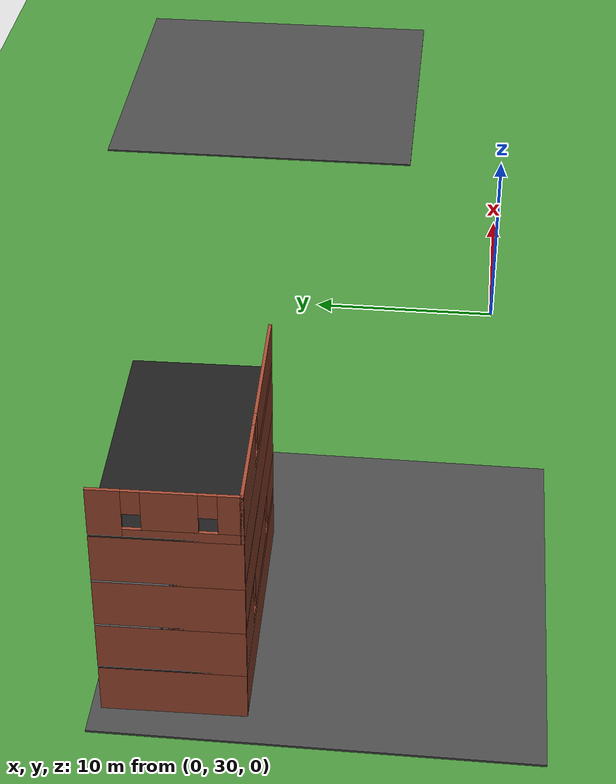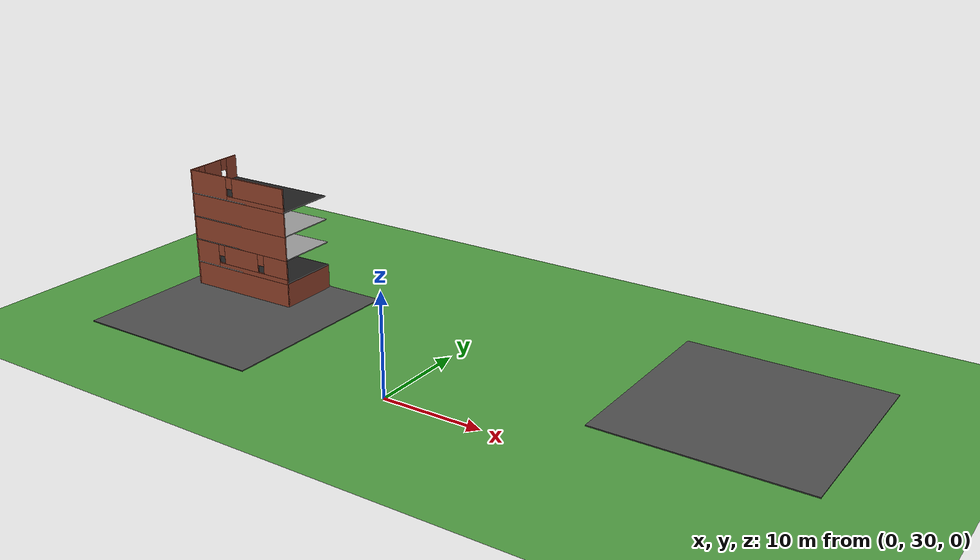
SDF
<sdf version="1.7">
 <world name="default">
  <model name="ground_plane">
   <static>1</static>
   <link name="link">
    <collision name="collision">
     <geometry><plane><normal>0 0 1</normal><size>100 100</size></plane></geometry>
     <surface>
      <contact><collide_bitmask>65535</collide_bitmask></contact>
      <friction><ode><mu>100</mu><mu2>50</mu2></ode></friction>
     </surface>
    </collision>
    <visual name="grass">
     <pose>0 0 -0.1 0 -0 0</pose>
     <cast_shadows>0</cast_shadows>
     <geometry><plane><normal>0 0 1</normal><size>1000 1000</size></plane></geometry>
     <material>
      <script><uri>file://media/materials/scripts/gazebo.material</uri><name>Gazebo/Grass</name></script>
     </material>
    </visual>
   </link>
  </model>
  <model name="asphalt_plane">
   <static>1</static>
   <link name="link">
    <collision name="collision"><geometry><box><size>20 20 0.1</size></box></geometry></collision>
    <visual name="visual">
     <cast_shadows>0</cast_shadows>
     <geometry><box><size>20 20 0.1</size></box></geometry>
     <material>
      <script>
       <uri>model://asphalt_plane/materials/scripts</uri>
       <uri>model://asphalt_plane/materials/textures</uri>
       <name>vrc/asphalt</name>
      </script>
     </material>
    </visual>
   </link>
   <pose>26.7323 45.4974 0 0 -0 0</pose>
  </model>
  <model name="asphalt_plane_2">
   <static>1</static>
   <link name="link">
    <collision name="collision"><geometry><box><size>20 20 0.1</size></box></geometry></collision>
    <visual name="visual">
     <cast_shadows>0</cast_shadows>
     <geometry><box><size>20 20 0.1</size></box></geometry>
     <material>
      <script>
       <uri>model://asphalt_plane/materials/scripts</uri>
       <uri>model://asphalt_plane/materials/textures</uri>
       <name>vrc/asphalt</name>
      </script>
     </material>
    </visual>
   </link>
   <pose>-23.8678 37.0884 0 0 -0 0</pose>
  </model>
  <model name="my_building_1_clone_0">
   <link name="Floor_13">
    <pose>-4.12557 0 2.5 0 -0 0</pose>
    <inertial>
     <mass>1</mass>
     <inertia><ixx>1</ixx><ixy>0</ixy><ixz>0</ixz><iyy>1</iyy><iyz>0</iyz><izz>1</izz></inertia>
    </inertial>
    <visual name="Floor_13_Visual">
     <pose>0 0 0.05 0 -0 0</pose>
     <geometry><box><size>6.5 12.25 0.1</size></box></geometry>
     <material>
      <script><uri>file://media/materials/scripts/gazebo.material</uri><name>Gazebo/Black</name></script>
      <ambient>1 1 1 1</ambient>
      <shader type="pixel"><normal_map>__default__</normal_map></shader>
      <diffuse>0 0 0 1</diffuse>
      <specular>0.1 0.1 0.1 1</specular>
      <emissive>0 0 0 1</emissive>
     </material>
     <meta><layer>1</layer></meta>
    </visual>
    <collision name="Floor_13_Collision">
     <pose>0 0 0.05 0 -0 0</pose>
     <geometry><box><size>6.5 12.25 0.1</size></box></geometry>
     <surface>
      <friction>
       <ode><mu>1</mu><mu2>1</mu2><fdir1>0 0 0</fdir1><slip1>0</slip1><slip2>0</slip2></ode>
       <torsional>
        <coefficient>1</coefficient>
        <patch_radius>0</patch_radius>
        <surface_radius>0</surface_radius>
        <use_patch_radius>1</use_patch_radius>
        <ode><slip>0</slip></ode>
       </torsional>
      </friction>
      <bounce><restitution_coefficient>0</restitution_coefficient><threshold>1e+06</threshold></bounce>
      <contact>
       <collide_without_contact>0</collide_without_contact>
       <collide_without_contact_bitmask>1</collide_without_contact_bitmask>
       <collide_bitmask>1</collide_bitmask>
       <ode>
        <soft_cfm>0</soft_cfm>
        <soft_erp>0.2</soft_erp>
        <kp>1e+13</kp>
        <kd>1</kd>
        <max_vel>0.01</max_vel>
        <min_depth>0</min_depth>
       </ode>
       <bullet>
        <split_impulse>1</split_impulse>
        <split_impulse_penetration_threshold>-0.01</split_impulse_penetration_threshold>
        <soft_cfm>0</soft_cfm>
        <soft_erp>0.2</soft_erp>
        <kp>1e+13</kp>
        <kd>1</kd>
       </bullet>
      </contact>
     </surface>
    </collision>
   </link>
   <link name="Floor_14">
    <pose>-4.12557 0 5 0 -0 0</pose>
    <visual name="Floor_14_Visual">
     <pose>0 0 0.05 0 -0 0</pose>
     <geometry><box><size>6.5 12.25 0.1</size></box></geometry>
     <material>
      <script><uri>file://media/materials/scripts/gazebo.material</uri><name>Gazebo/Grey</name></script>
      <ambient>1 1 1 1</ambient>
      <shader type="pixel"/>
     </material>
     <meta><layer>2</layer></meta>
    </visual>
    <collision name="Floor_14_Collision">
     <pose>0 0 0.05 0 -0 0</pose>
     <geometry><box><size>6.5 12.25 0.1</size></box></geometry>
     <surface>
      <friction>
       <ode><mu>1</mu><mu2>1</mu2><fdir1>0 0 0</fdir1><slip1>0</slip1><slip2>0</slip2></ode>
       <torsional>
        <coefficient>1</coefficient>
        <patch_radius>0</patch_radius>
        <surface_radius>0</surface_radius>
        <use_patch_radius>1</use_patch_radius>
        <ode><slip>0</slip></ode>
       </torsional>
      </friction>
      <bounce><restitution_coefficient>0</restitution_coefficient><threshold>1e+06</threshold></bounce>
      <contact>
       <collide_without_contact>0</collide_without_contact>
       <collide_without_contact_bitmask>1</collide_without_contact_bitmask>
       <collide_bitmask>1</collide_bitmask>
       <ode>
        <soft_cfm>0</soft_cfm>
        <soft_erp>0.2</soft_erp>
        <kp>1e+13</kp>
        <kd>1</kd>
        <max_vel>0.01</max_vel>
        <min_depth>0</min_depth>
       </ode>
       <bullet>
        <split_impulse>1</split_impulse>
        <split_impulse_penetration_threshold>-0.01</split_impulse_penetration_threshold>
        <soft_cfm>0</soft_cfm>
        <soft_erp>0.2</soft_erp>
        <kp>1e+13</kp>
        <kd>1</kd>
       </bullet>
      </contact>
     </surface>
    </collision>
   </link>
   <link name="Floor_15">
    <pose>-4.12557 0 7.5 0 -0 0</pose>
    <visual name="Floor_15_Visual">
     <pose>0 0 0.05 0 -0 0</pose>
     <geometry><box><size>6.5 12.25 0.1</size></box></geometry>
     <material>
      <script><uri>file://media/materials/scripts/gazebo.material</uri><name>Gazebo/Grey</name></script>
      <ambient>1 1 1 1</ambient>
      <shader type="pixel"/>
     </material>
     <meta><layer>3</layer></meta>
    </visual>
    <collision name="Floor_15_Collision">
     <pose>0 0 0.05 0 -0 0</pose>
     <geometry><box><size>6.5 12.25 0.1</size></box></geometry>
     <surface>
      <friction>
       <ode><mu>1</mu><mu2>1</mu2><fdir1>0 0 0</fdir1><slip1>0</slip1><slip2>0</slip2></ode>
       <torsional>
        <coefficient>1</coefficient>
        <patch_radius>0</patch_radius>
        <surface_radius>0</surface_radius>
        <use_patch_radius>1</use_patch_radius>
        <ode><slip>0</slip></ode>
       </torsional>
      </friction>
      <bounce><restitution_coefficient>0</restitution_coefficient><threshold>1e+06</threshold></bounce>
      <contact>
       <collide_without_contact>0</collide_without_contact>
       <collide_without_contact_bitmask>1</collide_without_contact_bitmask>
       <collide_bitmask>1</collide_bitmask>
       <ode>
        <soft_cfm>0</soft_cfm>
        <soft_erp>0.2</soft_erp>
        <kp>1e+13</kp>
        <kd>1</kd>
        <max_vel>0.01</max_vel>
        <min_depth>0</min_depth>
       </ode>
       <bullet>
        <split_impulse>1</split_impulse>
        <split_impulse_penetration_threshold>-0.01</split_impulse_penetration_threshold>
        <soft_cfm>0</soft_cfm>
        <soft_erp>0.2</soft_erp>
        <kp>1e+13</kp>
        <kd>1</kd>
       </bullet>
      </contact>
     </surface>
    </collision>
   </link>
   <link name="Floor_16">
    <pose>-4.12557 0 10 0 -0 0</pose>
    <inertial>
     <mass>1</mass>
     <inertia><ixx>1</ixx><ixy>0</ixy><ixz>0</ixz><iyy>1</iyy><iyz>0</iyz><izz>1</izz></inertia>
    </inertial>
    <visual name="Floor_16_Visual">
     <pose>0 0 0.05 0 -0 0</pose>
     <geometry><box><size>6.5 12.25 0.1</size></box></geometry>
     <material>
      <script><uri>file://media/materials/scripts/gazebo.material</uri><name>Gazebo/Black</name></script>
      <ambient>1 1 1 1</ambient>
      <shader type="pixel"><normal_map>__default__</normal_map></shader>
      <diffuse>0 0 0 1</diffuse>
      <specular>0.1 0.1 0.1 1</specular>
      <emissive>0 0 0 1</emissive>
     </material>
     <meta><layer>4</layer></meta>
    </visual>
    <collision name="Floor_16_Collision">
     <pose>0 0 0.05 0 -0 0</pose>
     <geometry><box><size>6.5 12.25 0.1</size></box></geometry>
     <surface>
      <friction>
       <ode><mu>1</mu><mu2>1</mu2><fdir1>0 0 0</fdir1><slip1>0</slip1><slip2>0</slip2></ode>
       <torsional>
        <coefficient>1</coefficient>
        <patch_radius>0</patch_radius>
        <surface_radius>0</surface_radius>
        <use_patch_radius>1</use_patch_radius>
        <ode><slip>0</slip></ode>
       </torsional>
      </friction>
      <bounce><restitution_coefficient>0</restitution_coefficient><threshold>1e+06</threshold></bounce>
      <contact>
       <collide_without_contact>0</collide_without_contact>
       <collide_without_contact_bitmask>1</collide_without_contact_bitmask>
       <collide_bitmask>1</collide_bitmask>
       <ode>
        <soft_cfm>0</soft_cfm>
        <soft_erp>0.2</soft_erp>
        <kp>1e+13</kp>
        <kd>1</kd>
        <max_vel>0.01</max_vel>
        <min_depth>0</min_depth>
       </ode>
       <bullet>
        <split_impulse>1</split_impulse>
        <split_impulse_penetration_threshold>-0.01</split_impulse_penetration_threshold>
        <soft_cfm>0</soft_cfm>
        <soft_erp>0.2</soft_erp>
        <kp>1e+13</kp>
        <kd>1</kd>
       </bullet>
      </contact>
     </surface>
    </collision>
   </link>
   <link name="Wall_18">
    <pose>-4.12557 -6.05 0 0 -0 0</pose>
    <visual name="Wall_18_Visual">
     <pose>0 0 1.25 0 -0 0</pose>
     <geometry><box><size>6.5 0.15 2.5</size></box></geometry>
     <material>
      <script><uri>file://media/materials/scripts/gazebo.material</uri><name>Gazebo/Bricks</name></script>
      <ambient>1 1 1 1</ambient>
      <shader type="pixel"/>
     </material>
     <meta><layer>0</layer></meta>
    </visual>
    <collision name="Wall_18_Collision">
     <pose>0 0 1.25 0 -0 0</pose>
     <geometry><box><size>6.5 0.15 2.5</size></box></geometry>
     <surface>
      <friction>
       <ode><mu>1</mu><mu2>1</mu2><fdir1>0 0 0</fdir1><slip1>0</slip1><slip2>0</slip2></ode>
       <torsional>
        <coefficient>1</coefficient>
        <patch_radius>0</patch_radius>
        <surface_radius>0</surface_radius>
        <use_patch_radius>1</use_patch_radius>
        <ode><slip>0</slip></ode>
       </torsional>
      </friction>
      <bounce><restitution_coefficient>0</restitution_coefficient><threshold>1e+06</threshold></bounce>
      <contact>
       <collide_without_contact>0</collide_without_contact>
       <collide_without_contact_bitmask>1</collide_without_contact_bitmask>
       <collide_bitmask>1</collide_bitmask>
       <ode>
        <soft_cfm>0</soft_cfm>
        <soft_erp>0.2</soft_erp>
        <kp>1e+13</kp>
        <kd>1</kd>
        <max_vel>0.01</max_vel>
        <min_depth>0</min_depth>
       </ode>
       <bullet>
        <split_impulse>1</split_impulse>
        <split_impulse_penetration_threshold>-0.01</split_impulse_penetration_threshold>
        <soft_cfm>0</soft_cfm>
        <soft_erp>0.2</soft_erp>
        <kp>1e+13</kp>
        <kd>1</kd>
       </bullet>
      </contact>
     </surface>
    </collision>
   </link>
   <link name="Wall_20">
    <pose>-4.12557 6.05 0 0 -0 3.14159</pose>
    <visual name="Wall_20_Visual">
     <pose>0 0 1.25 0 -0 0</pose>
     <geometry><box><size>6.5 0.15 2.5</size></box></geometry>
     <material>
      <script><uri>file://media/materials/scripts/gazebo.material</uri><name>Gazebo/Bricks</name></script>
      <ambient>1 1 1 1</ambient>
      <shader type="pixel"/>
     </material>
     <meta><layer>0</layer></meta>
    </visual>
    <collision name="Wall_20_Collision">
     <pose>0 0 1.25 0 -0 0</pose>
     <geometry><box><size>6.5 0.15 2.5</size></box></geometry>
     <surface>
      <friction>
       <ode><mu>1</mu><mu2>1</mu2><fdir1>0 0 0</fdir1><slip1>0</slip1><slip2>0</slip2></ode>
       <torsional>
        <coefficient>1</coefficient>
        <patch_radius>0</patch_radius>
        <surface_radius>0</surface_radius>
        <use_patch_radius>1</use_patch_radius>
        <ode><slip>0</slip></ode>
       </torsional>
      </friction>
      <bounce><restitution_coefficient>0</restitution_coefficient><threshold>1e+06</threshold></bounce>
      <contact>
       <collide_without_contact>0</collide_without_contact>
       <collide_without_contact_bitmask>1</collide_without_contact_bitmask>
       <collide_bitmask>1</collide_bitmask>
       <ode>
        <soft_cfm>0</soft_cfm>
        <soft_erp>0.2</soft_erp>
        <kp>1e+13</kp>
        <kd>1</kd>
        <max_vel>0.01</max_vel>
        <min_depth>0</min_depth>
       </ode>
       <bullet>
        <split_impulse>1</split_impulse>
        <split_impulse_penetration_threshold>-0.01</split_impulse_penetration_threshold>
        <soft_cfm>0</soft_cfm>
        <soft_erp>0.2</soft_erp>
        <kp>1e+13</kp>
        <kd>1</kd>
       </bullet>
      </contact>
     </surface>
    </collision>
   </link>
   <link name="Wall_21">
    <pose>-7.30057 0 0 0 0 -1.5708</pose>
    <visual name="Wall_21_Visual">
     <pose>0 0 1.25 0 -0 0</pose>
     <geometry><box><size>12.25 0.15 2.5</size></box></geometry>
     <material>
      <script><uri>file://media/materials/scripts/gazebo.material</uri><name>Gazebo/Bricks</name></script>
      <ambient>1 1 1 1</ambient>
      <shader type="pixel"/>
     </material>
     <meta><layer>0</layer></meta>
    </visual>
    <collision name="Wall_21_Collision">
     <pose>0 0 1.25 0 -0 0</pose>
     <geometry><box><size>12.25 0.15 2.5</size></box></geometry>
     <surface>
      <friction>
       <ode><mu>1</mu><mu2>1</mu2><fdir1>0 0 0</fdir1><slip1>0</slip1><slip2>0</slip2></ode>
       <torsional>
        <coefficient>1</coefficient>
        <patch_radius>0</patch_radius>
        <surface_radius>0</surface_radius>
        <use_patch_radius>1</use_patch_radius>
        <ode><slip>0</slip></ode>
       </torsional>
      </friction>
      <bounce><restitution_coefficient>0</restitution_coefficient><threshold>1e+06</threshold></bounce>
      <contact>
       <collide_without_contact>0</collide_without_contact>
       <collide_without_contact_bitmask>1</collide_without_contact_bitmask>
       <collide_bitmask>1</collide_bitmask>
       <ode>
        <soft_cfm>0</soft_cfm>
        <soft_erp>0.2</soft_erp>
        <kp>1e+13</kp>
        <kd>1</kd>
        <max_vel>0.01</max_vel>
        <min_depth>0</min_depth>
       </ode>
       <bullet>
        <split_impulse>1</split_impulse>
        <split_impulse_penetration_threshold>-0.01</split_impulse_penetration_threshold>
        <soft_cfm>0</soft_cfm>
        <soft_erp>0.2</soft_erp>
        <kp>1e+13</kp>
        <kd>1</kd>
       </bullet>
      </contact>
     </surface>
    </collision>
   </link>
   <link name="Wall_77">
    <pose>-4.12557 6.05 2.5 0 -0 3.14159</pose>
    <visual name="Wall_77_Visual">
     <pose>0 0 1.25 0 -0 0</pose>
     <geometry><box><size>6.5 0.15 2.5</size></box></geometry>
     <material>
      <script><uri>file://media/materials/scripts/gazebo.material</uri><name>Gazebo/Bricks</name></script>
      <ambient>1 1 1 1</ambient>
      <shader type="pixel"/>
     </material>
     <meta><layer>1</layer></meta>
    </visual>
    <collision name="Wall_77_Collision">
     <pose>0 0 1.25 0 -0 0</pose>
     <geometry><box><size>6.5 0.15 2.5</size></box></geometry>
     <surface>
      <friction>
       <ode><mu>1</mu><mu2>1</mu2><fdir1>0 0 0</fdir1><slip1>0</slip1><slip2>0</slip2></ode>
       <torsional>
        <coefficient>1</coefficient>
        <patch_radius>0</patch_radius>
        <surface_radius>0</surface_radius>
        <use_patch_radius>1</use_patch_radius>
        <ode><slip>0</slip></ode>
       </torsional>
      </friction>
      <bounce><restitution_coefficient>0</restitution_coefficient><threshold>1e+06</threshold></bounce>
      <contact>
       <collide_without_contact>0</collide_without_contact>
       <collide_without_contact_bitmask>1</collide_without_contact_bitmask>
       <collide_bitmask>1</collide_bitmask>
       <ode>
        <soft_cfm>0</soft_cfm>
        <soft_erp>0.2</soft_erp>
        <kp>1e+13</kp>
        <kd>1</kd>
        <max_vel>0.01</max_vel>
        <min_depth>0</min_depth>
       </ode>
       <bullet>
        <split_impulse>1</split_impulse>
        <split_impulse_penetration_threshold>-0.01</split_impulse_penetration_threshold>
        <soft_cfm>0</soft_cfm>
        <soft_erp>0.2</soft_erp>
        <kp>1e+13</kp>
        <kd>1</kd>
       </bullet>
      </contact>
     </surface>
    </collision>
   </link>
   <link name="Wall_78">
    <pose>-7.30057 0 2.5 0 0 -1.5708</pose>
    <visual name="Wall_78_Visual_1">
     <pose>1.54304 0 0.25 0 -0 0</pose>
     <geometry><box><size>9.16393 0.15 0.5</size></box></geometry>
     <material>
      <script><uri>file://media/materials/scripts/gazebo.material</uri><name>Gazebo/Bricks</name></script>
      <ambient>1 1 1 1</ambient>
      <shader type="pixel"/>
     </material>
     <meta><layer>1</layer></meta>
    </visual>
    <visual name="Wall_78_Visual_5">
     <pose>2.65451 0 1.9 0 -0 0</pose>
     <geometry><box><size>0.8 0.15 1.2</size></box></geometry>
     <material>
      <script><uri>file://media/materials/scripts/gazebo.material</uri><name>Gazebo/Bricks</name></script>
      <ambient>1 1 1 1</ambient>
      <shader type="pixel"/>
     </material>
     <meta><layer>1</layer></meta>
    </visual>
    <visual name="Wall_78_Visual_3">
     <pose>4.58976 0 1.5 0 -0 0</pose>
     <geometry><box><size>3.07049 0.15 2</size></box></geometry>
     <material>
      <script><uri>file://media/materials/scripts/gazebo.material</uri><name>Gazebo/Bricks</name></script>
      <ambient>1 1 1 1</ambient>
      <shader type="pixel"/>
     </material>
     <meta><layer>1</layer></meta>
    </visual>
    <visual name="Wall_78_Visual_4">
     <pose>-2.63893 0 1.9 0 -0 0</pose>
     <geometry><box><size>0.8 0.15 1.2</size></box></geometry>
     <material>
      <script><uri>file://media/materials/scripts/gazebo.material</uri><name>Gazebo/Bricks</name></script>
      <ambient>1 1 1 1</ambient>
      <shader type="pixel"/>
     </material>
     <meta><layer>1</layer></meta>
    </visual>
    <visual name="Wall_78_Visual_2">
     <pose>0.007793 0 1.5 0 -0 0</pose>
     <geometry><box><size>4.49344 0.15 2</size></box></geometry>
     <material>
      <script><uri>file://media/materials/scripts/gazebo.material</uri><name>Gazebo/Bricks</name></script>
      <ambient>1 1 1 1</ambient>
      <shader type="pixel"/>
     </material>
     <meta><layer>1</layer></meta>
    </visual>
    <visual name="Wall_78_Visual_0">
     <pose>-4.58196 0 1.25 0 -0 0</pose>
     <geometry><box><size>3.08607 0.15 2.5</size></box></geometry>
     <material>
      <script><uri>file://media/materials/scripts/gazebo.material</uri><name>Gazebo/Bricks</name></script>
      <ambient>1 1 1 1</ambient>
      <shader type="pixel"/>
     </material>
     <meta><layer>1</layer></meta>
    </visual>
    <collision name="Wall_78_Collision_0">
     <pose>-4.58196 0 1.25 0 -0 0</pose>
     <geometry><box><size>3.08607 0.15 2.5</size></box></geometry>
     <surface>
      <friction>
       <ode><mu>1</mu><mu2>1</mu2><fdir1>0 0 0</fdir1><slip1>0</slip1><slip2>0</slip2></ode>
       <torsional>
        <coefficient>1</coefficient>
        <patch_radius>0</patch_radius>
        <surface_radius>0</surface_radius>
        <use_patch_radius>1</use_patch_radius>
        <ode><slip>0</slip></ode>
       </torsional>
      </friction>
      <bounce><restitution_coefficient>0</restitution_coefficient><threshold>1e+06</threshold></bounce>
      <contact>
       <collide_without_contact>0</collide_without_contact>
       <collide_without_contact_bitmask>1</collide_without_contact_bitmask>
       <collide_bitmask>1</collide_bitmask>
       <ode>
        <soft_cfm>0</soft_cfm>
        <soft_erp>0.2</soft_erp>
        <kp>1e+13</kp>
        <kd>1</kd>
        <max_vel>0.01</max_vel>
        <min_depth>0</min_depth>
       </ode>
       <bullet>
        <split_impulse>1</split_impulse>
        <split_impulse_penetration_threshold>-0.01</split_impulse_penetration_threshold>
        <soft_cfm>0</soft_cfm>
        <soft_erp>0.2</soft_erp>
        <kp>1e+13</kp>
        <kd>1</kd>
       </bullet>
      </contact>
     </surface>
    </collision>
    <collision name="Wall_78_Collision_1">
     <pose>1.54304 0 0.25 0 -0 0</pose>
     <geometry><box><size>9.16393 0.15 0.5</size></box></geometry>
     <surface>
      <friction>
       <ode><mu>1</mu><mu2>1</mu2><fdir1>0 0 0</fdir1><slip1>0</slip1><slip2>0</slip2></ode>
       <torsional>
        <coefficient>1</coefficient>
        <patch_radius>0</patch_radius>
        <surface_radius>0</surface_radius>
        <use_patch_radius>1</use_patch_radius>
        <ode><slip>0</slip></ode>
       </torsional>
      </friction>
      <bounce><restitution_coefficient>0</restitution_coefficient><threshold>1e+06</threshold></bounce>
      <contact>
       <collide_without_contact>0</collide_without_contact>
       <collide_without_contact_bitmask>1</collide_without_contact_bitmask>
       <collide_bitmask>1</collide_bitmask>
       <ode>
        <soft_cfm>0</soft_cfm>
        <soft_erp>0.2</soft_erp>
        <kp>1e+13</kp>
        <kd>1</kd>
        <max_vel>0.01</max_vel>
        <min_depth>0</min_depth>
       </ode>
       <bullet>
        <split_impulse>1</split_impulse>
        <split_impulse_penetration_threshold>-0.01</split_impulse_penetration_threshold>
        <soft_cfm>0</soft_cfm>
        <soft_erp>0.2</soft_erp>
        <kp>1e+13</kp>
        <kd>1</kd>
       </bullet>
      </contact>
     </surface>
    </collision>
    <collision name="Wall_78_Collision_5">
     <pose>2.65451 0 1.9 0 -0 0</pose>
     <geometry><box><size>0.8 0.15 1.2</size></box></geometry>
     <surface>
      <friction>
       <ode><mu>1</mu><mu2>1</mu2><fdir1>0 0 0</fdir1><slip1>0</slip1><slip2>0</slip2></ode>
       <torsional>
        <coefficient>1</coefficient>
        <patch_radius>0</patch_radius>
        <surface_radius>0</surface_radius>
        <use_patch_radius>1</use_patch_radius>
        <ode><slip>0</slip></ode>
       </torsional>
      </friction>
      <bounce><restitution_coefficient>0</restitution_coefficient><threshold>1e+06</threshold></bounce>
      <contact>
       <collide_without_contact>0</collide_without_contact>
       <collide_without_contact_bitmask>1</collide_without_contact_bitmask>
       <collide_bitmask>1</collide_bitmask>
       <ode>
        <soft_cfm>0</soft_cfm>
        <soft_erp>0.2</soft_erp>
        <kp>1e+13</kp>
        <kd>1</kd>
        <max_vel>0.01</max_vel>
        <min_depth>0</min_depth>
       </ode>
       <bullet>
        <split_impulse>1</split_impulse>
        <split_impulse_penetration_threshold>-0.01</split_impulse_penetration_threshold>
        <soft_cfm>0</soft_cfm>
        <soft_erp>0.2</soft_erp>
        <kp>1e+13</kp>
        <kd>1</kd>
       </bullet>
      </contact>
     </surface>
    </collision>
    <collision name="Wall_78_Collision_3">
     <pose>4.58976 0 1.5 0 -0 0</pose>
     <geometry><box><size>3.07049 0.15 2</size></box></geometry>
     <surface>
      <friction>
       <ode><mu>1</mu><mu2>1</mu2><fdir1>0 0 0</fdir1><slip1>0</slip1><slip2>0</slip2></ode>
       <torsional>
        <coefficient>1</coefficient>
        <patch_radius>0</patch_radius>
        <surface_radius>0</surface_radius>
        <use_patch_radius>1</use_patch_radius>
        <ode><slip>0</slip></ode>
       </torsional>
      </friction>
      <bounce><restitution_coefficient>0</restitution_coefficient><threshold>1e+06</threshold></bounce>
      <contact>
       <collide_without_contact>0</collide_without_contact>
       <collide_without_contact_bitmask>1</collide_without_contact_bitmask>
       <collide_bitmask>1</collide_bitmask>
       <ode>
        <soft_cfm>0</soft_cfm>
        <soft_erp>0.2</soft_erp>
        <kp>1e+13</kp>
        <kd>1</kd>
        <max_vel>0.01</max_vel>
        <min_depth>0</min_depth>
       </ode>
       <bullet>
        <split_impulse>1</split_impulse>
        <split_impulse_penetration_threshold>-0.01</split_impulse_penetration_threshold>
        <soft_cfm>0</soft_cfm>
        <soft_erp>0.2</soft_erp>
        <kp>1e+13</kp>
        <kd>1</kd>
       </bullet>
      </contact>
     </surface>
    </collision>
    <collision name="Wall_78_Collision_4">
     <pose>-2.63893 0 1.9 0 -0 0</pose>
     <geometry><box><size>0.8 0.15 1.2</size></box></geometry>
     <surface>
      <friction>
       <ode><mu>1</mu><mu2>1</mu2><fdir1>0 0 0</fdir1><slip1>0</slip1><slip2>0</slip2></ode>
       <torsional>
        <coefficient>1</coefficient>
        <patch_radius>0</patch_radius>
        <surface_radius>0</surface_radius>
        <use_patch_radius>1</use_patch_radius>
        <ode><slip>0</slip></ode>
       </torsional>
      </friction>
      <bounce><restitution_coefficient>0</restitution_coefficient><threshold>1e+06</threshold></bounce>
      <contact>
       <collide_without_contact>0</collide_without_contact>
       <collide_without_contact_bitmask>1</collide_without_contact_bitmask>
       <collide_bitmask>1</collide_bitmask>
       <ode>
        <soft_cfm>0</soft_cfm>
        <soft_erp>0.2</soft_erp>
        <kp>1e+13</kp>
        <kd>1</kd>
        <max_vel>0.01</max_vel>
        <min_depth>0</min_depth>
       </ode>
       <bullet>
        <split_impulse>1</split_impulse>
        <split_impulse_penetration_threshold>-0.01</split_impulse_penetration_threshold>
        <soft_cfm>0</soft_cfm>
        <soft_erp>0.2</soft_erp>
        <kp>1e+13</kp>
        <kd>1</kd>
       </bullet>
      </contact>
     </surface>
    </collision>
    <collision name="Wall_78_Collision_2">
     <pose>0.007793 0 1.5 0 -0 0</pose>
     <geometry><box><size>4.49344 0.15 2</size></box></geometry>
     <surface>
      <friction>
       <ode><mu>1</mu><mu2>1</mu2><fdir1>0 0 0</fdir1><slip1>0</slip1><slip2>0</slip2></ode>
       <torsional>
        <coefficient>1</coefficient>
        <patch_radius>0</patch_radius>
        <surface_radius>0</surface_radius>
        <use_patch_radius>1</use_patch_radius>
        <ode><slip>0</slip></ode>
       </torsional>
      </friction>
      <bounce><restitution_coefficient>0</restitution_coefficient><threshold>1e+06</threshold></bounce>
      <contact>
       <collide_without_contact>0</collide_without_contact>
       <collide_without_contact_bitmask>1</collide_without_contact_bitmask>
       <collide_bitmask>1</collide_bitmask>
       <ode>
        <soft_cfm>0</soft_cfm>
        <soft_erp>0.2</soft_erp>
        <kp>1e+13</kp>
        <kd>1</kd>
        <max_vel>0.01</max_vel>
        <min_depth>0</min_depth>
       </ode>
       <bullet>
        <split_impulse>1</split_impulse>
        <split_impulse_penetration_threshold>-0.01</split_impulse_penetration_threshold>
        <soft_cfm>0</soft_cfm>
        <soft_erp>0.2</soft_erp>
        <kp>1e+13</kp>
        <kd>1</kd>
       </bullet>
      </contact>
     </surface>
    </collision>
   </link>
   <link name="Wall_81">
    <pose>-4.12557 6.05 5 0 -0 3.14159</pose>
    <visual name="Wall_81_Visual">
     <pose>0 0 1.25 0 -0 0</pose>
     <geometry><box><size>6.5 0.15 2.5</size></box></geometry>
     <material>
      <script><uri>file://media/materials/scripts/gazebo.material</uri><name>Gazebo/Bricks</name></script>
      <ambient>1 1 1 1</ambient>
      <shader type="pixel"/>
     </material>
     <meta><layer>2</layer></meta>
    </visual>
    <collision name="Wall_81_Collision">
     <pose>0 0 1.25 0 -0 0</pose>
     <geometry><box><size>6.5 0.15 2.5</size></box></geometry>
     <surface>
      <friction>
       <ode><mu>1</mu><mu2>1</mu2><fdir1>0 0 0</fdir1><slip1>0</slip1><slip2>0</slip2></ode>
       <torsional>
        <coefficient>1</coefficient>
        <patch_radius>0</patch_radius>
        <surface_radius>0</surface_radius>
        <use_patch_radius>1</use_patch_radius>
        <ode><slip>0</slip></ode>
       </torsional>
      </friction>
      <bounce><restitution_coefficient>0</restitution_coefficient><threshold>1e+06</threshold></bounce>
      <contact>
       <collide_without_contact>0</collide_without_contact>
       <collide_without_contact_bitmask>1</collide_without_contact_bitmask>
       <collide_bitmask>1</collide_bitmask>
       <ode>
        <soft_cfm>0</soft_cfm>
        <soft_erp>0.2</soft_erp>
        <kp>1e+13</kp>
        <kd>1</kd>
        <max_vel>0.01</max_vel>
        <min_depth>0</min_depth>
       </ode>
       <bullet>
        <split_impulse>1</split_impulse>
        <split_impulse_penetration_threshold>-0.01</split_impulse_penetration_threshold>
        <soft_cfm>0</soft_cfm>
        <soft_erp>0.2</soft_erp>
        <kp>1e+13</kp>
        <kd>1</kd>
       </bullet>
      </contact>
     </surface>
    </collision>
   </link>
   <link name="Wall_82">
    <pose>-7.30057 0 5 0 0 -1.5708</pose>
    <visual name="Wall_82_Visual">
     <pose>0 0 1.25 0 -0 0</pose>
     <geometry><box><size>12.25 0.15 2.5</size></box></geometry>
     <material>
      <script><uri>file://media/materials/scripts/gazebo.material</uri><name>Gazebo/Bricks</name></script>
      <ambient>1 1 1 1</ambient>
      <shader type="pixel"/>
     </material>
     <meta><layer>2</layer></meta>
    </visual>
    <collision name="Wall_82_Collision">
     <pose>0 0 1.25 0 -0 0</pose>
     <geometry><box><size>12.25 0.15 2.5</size></box></geometry>
     <surface>
      <friction>
       <ode><mu>1</mu><mu2>1</mu2><fdir1>0 0 0</fdir1><slip1>0</slip1><slip2>0</slip2></ode>
       <torsional>
        <coefficient>1</coefficient>
        <patch_radius>0</patch_radius>
        <surface_radius>0</surface_radius>
        <use_patch_radius>1</use_patch_radius>
        <ode><slip>0</slip></ode>
       </torsional>
      </friction>
      <bounce><restitution_coefficient>0</restitution_coefficient><threshold>1e+06</threshold></bounce>
      <contact>
       <collide_without_contact>0</collide_without_contact>
       <collide_without_contact_bitmask>1</collide_without_contact_bitmask>
       <collide_bitmask>1</collide_bitmask>
       <ode>
        <soft_cfm>0</soft_cfm>
        <soft_erp>0.2</soft_erp>
        <kp>1e+13</kp>
        <kd>1</kd>
        <max_vel>0.01</max_vel>
        <min_depth>0</min_depth>
       </ode>
       <bullet>
        <split_impulse>1</split_impulse>
        <split_impulse_penetration_threshold>-0.01</split_impulse_penetration_threshold>
        <soft_cfm>0</soft_cfm>
        <soft_erp>0.2</soft_erp>
        <kp>1e+13</kp>
        <kd>1</kd>
       </bullet>
      </contact>
     </surface>
    </collision>
   </link>
   <link name="Wall_85">
    <pose>-4.12557 6.05 7.5 0 -0 3.14159</pose>
    <visual name="Wall_85_Visual">
     <pose>0 0 1.25 0 -0 0</pose>
     <geometry><box><size>6.5 0.15 2.5</size></box></geometry>
     <material>
      <script><uri>file://media/materials/scripts/gazebo.material</uri><name>Gazebo/Bricks</name></script>
      <ambient>1 1 1 1</ambient>
      <shader type="pixel"/>
     </material>
     <meta><layer>3</layer></meta>
    </visual>
    <collision name="Wall_85_Collision">
     <pose>0 0 1.25 0 -0 0</pose>
     <geometry><box><size>6.5 0.15 2.5</size></box></geometry>
     <surface>
      <friction>
       <ode><mu>1</mu><mu2>1</mu2><fdir1>0 0 0</fdir1><slip1>0</slip1><slip2>0</slip2></ode>
       <torsional>
        <coefficient>1</coefficient>
        <patch_radius>0</patch_radius>
        <surface_radius>0</surface_radius>
        <use_patch_radius>1</use_patch_radius>
        <ode><slip>0</slip></ode>
       </torsional>
      </friction>
      <bounce><restitution_coefficient>0</restitution_coefficient><threshold>1e+06</threshold></bounce>
      <contact>
       <collide_without_contact>0</collide_without_contact>
       <collide_without_contact_bitmask>1</collide_without_contact_bitmask>
       <collide_bitmask>1</collide_bitmask>
       <ode>
        <soft_cfm>0</soft_cfm>
        <soft_erp>0.2</soft_erp>
        <kp>1e+13</kp>
        <kd>1</kd>
        <max_vel>0.01</max_vel>
        <min_depth>0</min_depth>
       </ode>
       <bullet>
        <split_impulse>1</split_impulse>
        <split_impulse_penetration_threshold>-0.01</split_impulse_penetration_threshold>
        <soft_cfm>0</soft_cfm>
        <soft_erp>0.2</soft_erp>
        <kp>1e+13</kp>
        <kd>1</kd>
       </bullet>
      </contact>
     </surface>
    </collision>
   </link>
   <link name="Wall_86">
    <pose>-7.30057 0 7.5 0 0 -1.5708</pose>
    <visual name="Wall_86_Visual">
     <pose>0 0 1.25 0 -0 0</pose>
     <geometry><box><size>12.25 0.15 2.5</size></box></geometry>
     <material>
      <script><uri>file://media/materials/scripts/gazebo.material</uri><name>Gazebo/Bricks</name></script>
      <ambient>1 1 1 1</ambient>
      <shader type="pixel"/>
     </material>
     <meta><layer>3</layer></meta>
    </visual>
    <collision name="Wall_86_Collision">
     <pose>0 0 1.25 0 -0 0</pose>
     <geometry><box><size>12.25 0.15 2.5</size></box></geometry>
     <surface>
      <friction>
       <ode><mu>1</mu><mu2>1</mu2><fdir1>0 0 0</fdir1><slip1>0</slip1><slip2>0</slip2></ode>
       <torsional>
        <coefficient>1</coefficient>
        <patch_radius>0</patch_radius>
        <surface_radius>0</surface_radius>
        <use_patch_radius>1</use_patch_radius>
        <ode><slip>0</slip></ode>
       </torsional>
      </friction>
      <bounce><restitution_coefficient>0</restitution_coefficient><threshold>1e+06</threshold></bounce>
      <contact>
       <collide_without_contact>0</collide_without_contact>
       <collide_without_contact_bitmask>1</collide_without_contact_bitmask>
       <collide_bitmask>1</collide_bitmask>
       <ode>
        <soft_cfm>0</soft_cfm>
        <soft_erp>0.2</soft_erp>
        <kp>1e+13</kp>
        <kd>1</kd>
        <max_vel>0.01</max_vel>
        <min_depth>0</min_depth>
       </ode>
       <bullet>
        <split_impulse>1</split_impulse>
        <split_impulse_penetration_threshold>-0.01</split_impulse_penetration_threshold>
        <soft_cfm>0</soft_cfm>
        <soft_erp>0.2</soft_erp>
        <kp>1e+13</kp>
        <kd>1</kd>
       </bullet>
      </contact>
     </surface>
    </collision>
   </link>
   <link name="Wall_89">
    <pose>-4.12557 6.05 10 0 -0 3.14159</pose>
    <visual name="Wall_89_Visual_5">
     <pose>1.78441 0 1.9 0 -0 0</pose>
     <geometry><box><size>0.8 0.15 1.2</size></box></geometry>
     <material>
      <script><uri>file://media/materials/scripts/gazebo.material</uri><name>Gazebo/Bricks</name></script>
      <ambient>1 1 1 1</ambient>
      <shader type="pixel"/>
     </material>
     <meta><layer>4</layer></meta>
    </visual>
    <visual name="Wall_89_Visual_2">
     <pose>0.201698 0 1.5 0 -0 0</pose>
     <geometry><box><size>2.36542 0.15 2</size></box></geometry>
     <material>
      <script><uri>file://media/materials/scripts/gazebo.material</uri><name>Gazebo/Bricks</name></script>
      <ambient>1 1 1 1</ambient>
      <shader type="pixel"/>
     </material>
     <meta><layer>4</layer></meta>
    </visual>
    <visual name="Wall_89_Visual_4">
     <pose>-1.38101 0 1.9 0 -0 0</pose>
     <geometry><box><size>0.8 0.15 1.2</size></box></geometry>
     <material>
      <script><uri>file://media/materials/scripts/gazebo.material</uri><name>Gazebo/Bricks</name></script>
      <ambient>1 1 1 1</ambient>
      <shader type="pixel"/>
     </material>
     <meta><layer>4</layer></meta>
    </visual>
    <visual name="Wall_89_Visual_3">
     <pose>2.7172 0 1.5 0 -0 0</pose>
     <geometry><box><size>1.06559 0.15 2</size></box></geometry>
     <material>
      <script><uri>file://media/materials/scripts/gazebo.material</uri><name>Gazebo/Bricks</name></script>
      <ambient>1 1 1 1</ambient>
      <shader type="pixel"/>
     </material>
     <meta><layer>4</layer></meta>
    </visual>
    <visual name="Wall_89_Visual_0">
     <pose>-2.51551 0 1.25 0 -0 0</pose>
     <geometry><box><size>1.46899 0.15 2.5</size></box></geometry>
     <material>
      <script><uri>file://media/materials/scripts/gazebo.material</uri><name>Gazebo/Bricks</name></script>
      <ambient>1 1 1 1</ambient>
      <shader type="pixel"/>
     </material>
     <meta><layer>4</layer></meta>
    </visual>
    <visual name="Wall_89_Visual_1">
     <pose>0.734493 0 0.25 0 -0 0</pose>
     <geometry><box><size>5.03101 0.15 0.5</size></box></geometry>
     <material>
      <script><uri>file://media/materials/scripts/gazebo.material</uri><name>Gazebo/Bricks</name></script>
      <ambient>1 1 1 1</ambient>
      <shader type="pixel"/>
     </material>
     <meta><layer>4</layer></meta>
    </visual>
    <collision name="Wall_89_Collision_5">
     <pose>1.78441 0 1.9 0 -0 0</pose>
     <geometry><box><size>0.8 0.15 1.2</size></box></geometry>
     <surface>
      <friction>
       <ode><mu>1</mu><mu2>1</mu2><fdir1>0 0 0</fdir1><slip1>0</slip1><slip2>0</slip2></ode>
       <torsional>
        <coefficient>1</coefficient>
        <patch_radius>0</patch_radius>
        <surface_radius>0</surface_radius>
        <use_patch_radius>1</use_patch_radius>
        <ode><slip>0</slip></ode>
       </torsional>
      </friction>
      <bounce><restitution_coefficient>0</restitution_coefficient><threshold>1e+06</threshold></bounce>
      <contact>
       <collide_without_contact>0</collide_without_contact>
       <collide_without_contact_bitmask>1</collide_without_contact_bitmask>
       <collide_bitmask>1</collide_bitmask>
       <ode>
        <soft_cfm>0</soft_cfm>
        <soft_erp>0.2</soft_erp>
        <kp>1e+13</kp>
        <kd>1</kd>
        <max_vel>0.01</max_vel>
        <min_depth>0</min_depth>
       </ode>
       <bullet>
        <split_impulse>1</split_impulse>
        <split_impulse_penetration_threshold>-0.01</split_impulse_penetration_threshold>
        <soft_cfm>0</soft_cfm>
        <soft_erp>0.2</soft_erp>
        <kp>1e+13</kp>
        <kd>1</kd>
       </bullet>
      </contact>
     </surface>
    </collision>
    <collision name="Wall_89_Collision_4">
     <pose>-1.38101 0 1.9 0 -0 0</pose>
     <geometry><box><size>0.8 0.15 1.2</size></box></geometry>
     <surface>
      <friction>
       <ode><mu>1</mu><mu2>1</mu2><fdir1>0 0 0</fdir1><slip1>0</slip1><slip2>0</slip2></ode>
       <torsional>
        <coefficient>1</coefficient>
        <patch_radius>0</patch_radius>
        <surface_radius>0</surface_radius>
        <use_patch_radius>1</use_patch_radius>
        <ode><slip>0</slip></ode>
       </torsional>
      </friction>
      <bounce><restitution_coefficient>0</restitution_coefficient><threshold>1e+06</threshold></bounce>
      <contact>
       <collide_without_contact>0</collide_without_contact>
       <collide_without_contact_bitmask>1</collide_without_contact_bitmask>
       <collide_bitmask>1</collide_bitmask>
       <ode>
        <soft_cfm>0</soft_cfm>
        <soft_erp>0.2</soft_erp>
        <kp>1e+13</kp>
        <kd>1</kd>
        <max_vel>0.01</max_vel>
        <min_depth>0</min_depth>
       </ode>
       <bullet>
        <split_impulse>1</split_impulse>
        <split_impulse_penetration_threshold>-0.01</split_impulse_penetration_threshold>
        <soft_cfm>0</soft_cfm>
        <soft_erp>0.2</soft_erp>
        <kp>1e+13</kp>
        <kd>1</kd>
       </bullet>
      </contact>
     </surface>
    </collision>
    <collision name="Wall_89_Collision_1">
     <pose>0.734493 0 0.25 0 -0 0</pose>
     <geometry><box><size>5.03101 0.15 0.5</size></box></geometry>
     <surface>
      <friction>
       <ode><mu>1</mu><mu2>1</mu2><fdir1>0 0 0</fdir1><slip1>0</slip1><slip2>0</slip2></ode>
       <torsional>
        <coefficient>1</coefficient>
        <patch_radius>0</patch_radius>
        <surface_radius>0</surface_radius>
        <use_patch_radius>1</use_patch_radius>
        <ode><slip>0</slip></ode>
       </torsional>
      </friction>
      <bounce><restitution_coefficient>0</restitution_coefficient><threshold>1e+06</threshold></bounce>
      <contact>
       <collide_without_contact>0</collide_without_contact>
       <collide_without_contact_bitmask>1</collide_without_contact_bitmask>
       <collide_bitmask>1</collide_bitmask>
       <ode>
        <soft_cfm>0</soft_cfm>
        <soft_erp>0.2</soft_erp>
        <kp>1e+13</kp>
        <kd>1</kd>
        <max_vel>0.01</max_vel>
        <min_depth>0</min_depth>
       </ode>
       <bullet>
        <split_impulse>1</split_impulse>
        <split_impulse_penetration_threshold>-0.01</split_impulse_penetration_threshold>
        <soft_cfm>0</soft_cfm>
        <soft_erp>0.2</soft_erp>
        <kp>1e+13</kp>
        <kd>1</kd>
       </bullet>
      </contact>
     </surface>
    </collision>
    <collision name="Wall_89_Collision_0">
     <pose>-2.51551 0 1.25 0 -0 0</pose>
     <geometry><box><size>1.46899 0.15 2.5</size></box></geometry>
     <surface>
      <friction>
       <ode><mu>1</mu><mu2>1</mu2><fdir1>0 0 0</fdir1><slip1>0</slip1><slip2>0</slip2></ode>
       <torsional>
        <coefficient>1</coefficient>
        <patch_radius>0</patch_radius>
        <surface_radius>0</surface_radius>
        <use_patch_radius>1</use_patch_radius>
        <ode><slip>0</slip></ode>
       </torsional>
      </friction>
      <bounce><restitution_coefficient>0</restitution_coefficient><threshold>1e+06</threshold></bounce>
      <contact>
       <collide_without_contact>0</collide_without_contact>
       <collide_without_contact_bitmask>1</collide_without_contact_bitmask>
       <collide_bitmask>1</collide_bitmask>
       <ode>
        <soft_cfm>0</soft_cfm>
        <soft_erp>0.2</soft_erp>
        <kp>1e+13</kp>
        <kd>1</kd>
        <max_vel>0.01</max_vel>
        <min_depth>0</min_depth>
       </ode>
       <bullet>
        <split_impulse>1</split_impulse>
        <split_impulse_penetration_threshold>-0.01</split_impulse_penetration_threshold>
        <soft_cfm>0</soft_cfm>
        <soft_erp>0.2</soft_erp>
        <kp>1e+13</kp>
        <kd>1</kd>
       </bullet>
      </contact>
     </surface>
    </collision>
    <collision name="Wall_89_Collision_2">
     <pose>0.201698 0 1.5 0 -0 0</pose>
     <geometry><box><size>2.36542 0.15 2</size></box></geometry>
     <surface>
      <friction>
       <ode><mu>1</mu><mu2>1</mu2><fdir1>0 0 0</fdir1><slip1>0</slip1><slip2>0</slip2></ode>
       <torsional>
        <coefficient>1</coefficient>
        <patch_radius>0</patch_radius>
        <surface_radius>0</surface_radius>
        <use_patch_radius>1</use_patch_radius>
        <ode><slip>0</slip></ode>
       </torsional>
      </friction>
      <bounce><restitution_coefficient>0</restitution_coefficient><threshold>1e+06</threshold></bounce>
      <contact>
       <collide_without_contact>0</collide_without_contact>
       <collide_without_contact_bitmask>1</collide_without_contact_bitmask>
       <collide_bitmask>1</collide_bitmask>
       <ode>
        <soft_cfm>0</soft_cfm>
        <soft_erp>0.2</soft_erp>
        <kp>1e+13</kp>
        <kd>1</kd>
        <max_vel>0.01</max_vel>
        <min_depth>0</min_depth>
       </ode>
       <bullet>
        <split_impulse>1</split_impulse>
        <split_impulse_penetration_threshold>-0.01</split_impulse_penetration_threshold>
        <soft_cfm>0</soft_cfm>
        <soft_erp>0.2</soft_erp>
        <kp>1e+13</kp>
        <kd>1</kd>
       </bullet>
      </contact>
     </surface>
    </collision>
    <collision name="Wall_89_Collision_3">
     <pose>2.7172 0 1.5 0 -0 0</pose>
     <geometry><box><size>1.06559 0.15 2</size></box></geometry>
     <surface>
      <friction>
       <ode><mu>1</mu><mu2>1</mu2><fdir1>0 0 0</fdir1><slip1>0</slip1><slip2>0</slip2></ode>
       <torsional>
        <coefficient>1</coefficient>
        <patch_radius>0</patch_radius>
        <surface_radius>0</surface_radius>
        <use_patch_radius>1</use_patch_radius>
        <ode><slip>0</slip></ode>
       </torsional>
      </friction>
      <bounce><restitution_coefficient>0</restitution_coefficient><threshold>1e+06</threshold></bounce>
      <contact>
       <collide_without_contact>0</collide_without_contact>
       <collide_without_contact_bitmask>1</collide_without_contact_bitmask>
       <collide_bitmask>1</collide_bitmask>
       <ode>
        <soft_cfm>0</soft_cfm>
        <soft_erp>0.2</soft_erp>
        <kp>1e+13</kp>
        <kd>1</kd>
        <max_vel>0.01</max_vel>
        <min_depth>0</min_depth>
       </ode>
       <bullet>
        <split_impulse>1</split_impulse>
        <split_impulse_penetration_threshold>-0.01</split_impulse_penetration_threshold>
        <soft_cfm>0</soft_cfm>
        <soft_erp>0.2</soft_erp>
        <kp>1e+13</kp>
        <kd>1</kd>
       </bullet>
      </contact>
     </surface>
    </collision>
   </link>
   <link name="Wall_90">
    <pose>-7.30057 0 10 0 0 -1.5708</pose>
    <visual name="Wall_90_Visual_1">
     <pose>2.39424 0 0.25 0 -0 0</pose>
     <geometry><box><size>7.46151 0.15 0.5</size></box></geometry>
     <material>
      <script><uri>file://media/materials/scripts/gazebo.material</uri><name>Gazebo/Bricks</name></script>
      <ambient>1 1 1 1</ambient>
      <shader type="pixel"/>
     </material>
     <meta><layer>4</layer></meta>
    </visual>
    <visual name="Wall_90_Visual_0">
     <pose>-3.73076 0 1.25 0 -0 0</pose>
     <geometry><box><size>4.78849 0.15 2.5</size></box></geometry>
     <material>
      <script><uri>file://media/materials/scripts/gazebo.material</uri><name>Gazebo/Bricks</name></script>
      <ambient>1 1 1 1</ambient>
      <shader type="pixel"/>
     </material>
     <meta><layer>4</layer></meta>
    </visual>
    <visual name="Wall_90_Visual_3">
     <pose>-0.936514 0 1.9 0 -0 0</pose>
     <geometry><box><size>0.8 0.15 1.2</size></box></geometry>
     <material>
      <script><uri>file://media/materials/scripts/gazebo.material</uri><name>Gazebo/Bricks</name></script>
      <ambient>1 1 1 1</ambient>
      <shader type="pixel"/>
     </material>
     <meta><layer>4</layer></meta>
    </visual>
    <visual name="Wall_90_Visual_2">
     <pose>2.79424 0 1.5 0 -0 0</pose>
     <geometry><box><size>6.66151 0.15 2</size></box></geometry>
     <material>
      <script><uri>file://media/materials/scripts/gazebo.material</uri><name>Gazebo/Bricks</name></script>
      <ambient>1 1 1 1</ambient>
      <shader type="pixel"/>
     </material>
     <meta><layer>4</layer></meta>
    </visual>
    <collision name="Wall_90_Collision_0">
     <pose>-3.73076 0 1.25 0 -0 0</pose>
     <geometry><box><size>4.78849 0.15 2.5</size></box></geometry>
     <surface>
      <friction>
       <ode><mu>1</mu><mu2>1</mu2><fdir1>0 0 0</fdir1><slip1>0</slip1><slip2>0</slip2></ode>
       <torsional>
        <coefficient>1</coefficient>
        <patch_radius>0</patch_radius>
        <surface_radius>0</surface_radius>
        <use_patch_radius>1</use_patch_radius>
        <ode><slip>0</slip></ode>
       </torsional>
      </friction>
      <bounce><restitution_coefficient>0</restitution_coefficient><threshold>1e+06</threshold></bounce>
      <contact>
       <collide_without_contact>0</collide_without_contact>
       <collide_without_contact_bitmask>1</collide_without_contact_bitmask>
       <collide_bitmask>1</collide_bitmask>
       <ode>
        <soft_cfm>0</soft_cfm>
        <soft_erp>0.2</soft_erp>
        <kp>1e+13</kp>
        <kd>1</kd>
        <max_vel>0.01</max_vel>
        <min_depth>0</min_depth>
       </ode>
       <bullet>
        <split_impulse>1</split_impulse>
        <split_impulse_penetration_threshold>-0.01</split_impulse_penetration_threshold>
        <soft_cfm>0</soft_cfm>
        <soft_erp>0.2</soft_erp>
        <kp>1e+13</kp>
        <kd>1</kd>
       </bullet>
      </contact>
     </surface>
    </collision>
    <collision name="Wall_90_Collision_1">
     <pose>2.39424 0 0.25 0 -0 0</pose>
     <geometry><box><size>7.46151 0.15 0.5</size></box></geometry>
     <surface>
      <friction>
       <ode><mu>1</mu><mu2>1</mu2><fdir1>0 0 0</fdir1><slip1>0</slip1><slip2>0</slip2></ode>
       <torsional>
        <coefficient>1</coefficient>
        <patch_radius>0</patch_radius>
        <surface_radius>0</surface_radius>
        <use_patch_radius>1</use_patch_radius>
        <ode><slip>0</slip></ode>
       </torsional>
      </friction>
      <bounce><restitution_coefficient>0</restitution_coefficient><threshold>1e+06</threshold></bounce>
      <contact>
       <collide_without_contact>0</collide_without_contact>
       <collide_without_contact_bitmask>1</collide_without_contact_bitmask>
       <collide_bitmask>1</collide_bitmask>
       <ode>
        <soft_cfm>0</soft_cfm>
        <soft_erp>0.2</soft_erp>
        <kp>1e+13</kp>
        <kd>1</kd>
        <max_vel>0.01</max_vel>
        <min_depth>0</min_depth>
       </ode>
       <bullet>
        <split_impulse>1</split_impulse>
        <split_impulse_penetration_threshold>-0.01</split_impulse_penetration_threshold>
        <soft_cfm>0</soft_cfm>
        <soft_erp>0.2</soft_erp>
        <kp>1e+13</kp>
        <kd>1</kd>
       </bullet>
      </contact>
     </surface>
    </collision>
    <collision name="Wall_90_Collision_2">
     <pose>2.79424 0 1.5 0 -0 0</pose>
     <geometry><box><size>6.66151 0.15 2</size></box></geometry>
     <surface>
      <friction>
       <ode><mu>1</mu><mu2>1</mu2><fdir1>0 0 0</fdir1><slip1>0</slip1><slip2>0</slip2></ode>
       <torsional>
        <coefficient>1</coefficient>
        <patch_radius>0</patch_radius>
        <surface_radius>0</surface_radius>
        <use_patch_radius>1</use_patch_radius>
        <ode><slip>0</slip></ode>
       </torsional>
      </friction>
      <bounce><restitution_coefficient>0</restitution_coefficient><threshold>1e+06</threshold></bounce>
      <contact>
       <collide_without_contact>0</collide_without_contact>
       <collide_without_contact_bitmask>1</collide_without_contact_bitmask>
       <collide_bitmask>1</collide_bitmask>
       <ode>
        <soft_cfm>0</soft_cfm>
        <soft_erp>0.2</soft_erp>
        <kp>1e+13</kp>
        <kd>1</kd>
        <max_vel>0.01</max_vel>
        <min_depth>0</min_depth>
       </ode>
       <bullet>
        <split_impulse>1</split_impulse>
        <split_impulse_penetration_threshold>-0.01</split_impulse_penetration_threshold>
        <soft_cfm>0</soft_cfm>
        <soft_erp>0.2</soft_erp>
        <kp>1e+13</kp>
        <kd>1</kd>
       </bullet>
      </contact>
     </surface>
    </collision>
    <collision name="Wall_90_Collision_3">
     <pose>-0.936514 0 1.9 0 -0 0</pose>
     <geometry><box><size>0.8 0.15 1.2</size></box></geometry>
     <surface>
      <friction>
       <ode><mu>1</mu><mu2>1</mu2><fdir1>0 0 0</fdir1><slip1>0</slip1><slip2>0</slip2></ode>
       <torsional>
        <coefficient>1</coefficient>
        <patch_radius>0</patch_radius>
        <surface_radius>0</surface_radius>
        <use_patch_radius>1</use_patch_radius>
        <ode><slip>0</slip></ode>
       </torsional>
      </friction>
      <bounce><restitution_coefficient>0</restitution_coefficient><threshold>1e+06</threshold></bounce>
      <contact>
       <collide_without_contact>0</collide_without_contact>
       <collide_without_contact_bitmask>1</collide_without_contact_bitmask>
       <collide_bitmask>1</collide_bitmask>
       <ode>
        <soft_cfm>0</soft_cfm>
        <soft_erp>0.2</soft_erp>
        <kp>1e+13</kp>
        <kd>1</kd>
        <max_vel>0.01</max_vel>
        <min_depth>0</min_depth>
       </ode>
       <bullet>
        <split_impulse>1</split_impulse>
        <split_impulse_penetration_threshold>-0.01</split_impulse_penetration_threshold>
        <soft_cfm>0</soft_cfm>
        <soft_erp>0.2</soft_erp>
        <kp>1e+13</kp>
        <kd>1</kd>
       </bullet>
      </contact>
     </surface>
    </collision>
   </link>
   <static>1</static>
   <pose>-26.3728 47.6242 0 0 -0 1.58902</pose>
  </model>
 </world>
</sdf>
